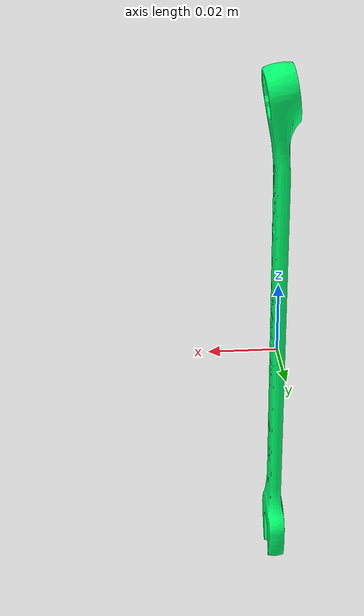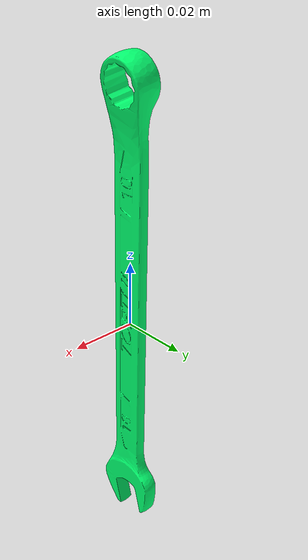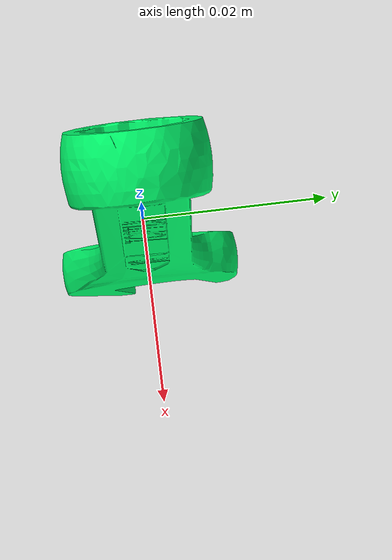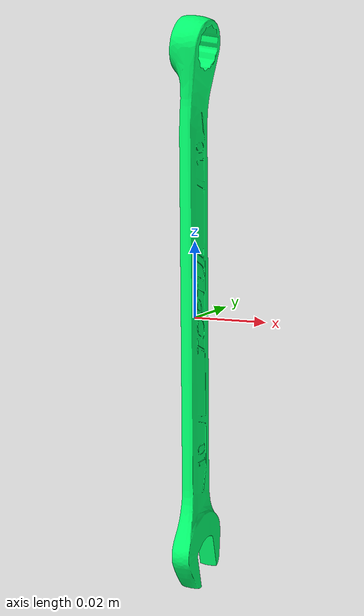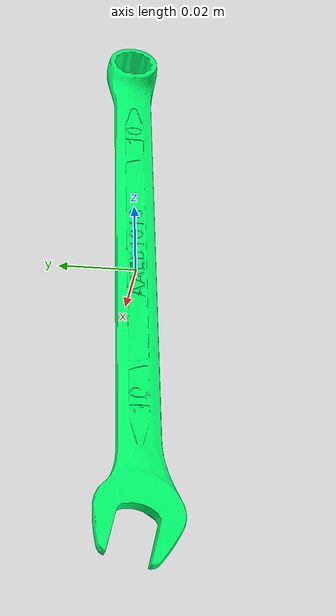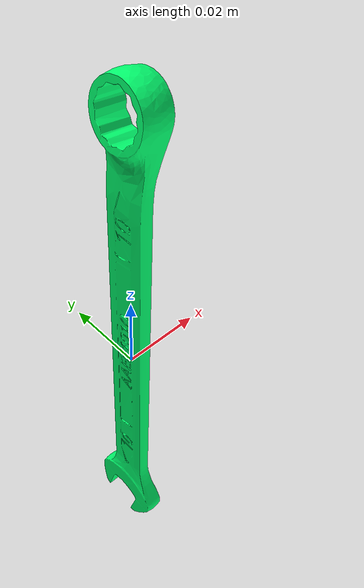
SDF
<?xml version="1.0"?>
<sdf version="1.7">
  <model name="combination_wrench_10mm_offset_bright">
    <pose>0 0 0 0 0 0</pose>
    <static>false</static>
    <link name="link">
      <!-- link frame = tool CoM; Z = long axis (+ toward tool end), X = forward, Y = Z x X -->
      <inertial>
        <pose>0 0 0 0 0 0</pose>
        <mass>0.047622</mass>
        <inertia>
          <ixx>9.774340e-05</ixx>
          <ixy>-2.032925e-20</ixy>
          <ixz>-1.085192e-24</ixz>
          <iyy>9.710406e-05</iyy>
          <iyz>2.428364e-23</iyz>
          <izz>7.988977e-07</izz>
        </inertia>
      </inertial>
      <collision name="collision">
        <geometry>
          <mesh>
            <uri>model://combination_wrench_10mm_offset/meshes/combination_wrench_10mm_offset.dae</uri>
          </mesh>
        </geometry>
      </collision>
      <visual name="visual">
        <geometry>
          <mesh>
            <uri>model://combination_wrench_10mm_offset/meshes/combination_wrench_10mm_offset.dae</uri>
          </mesh>
        </geometry>
        <material>
          <ambient>0.000 0.450 0.194 1.0</ambient>
          <diffuse>0.000 1.000 0.430 1.0</diffuse>
          <specular>0.85 0.85 0.85 1.0</specular>
          <emissive>0 0 0 1.0</emissive>
        </material>
      </visual>
    </link>
  </model>
</sdf>
